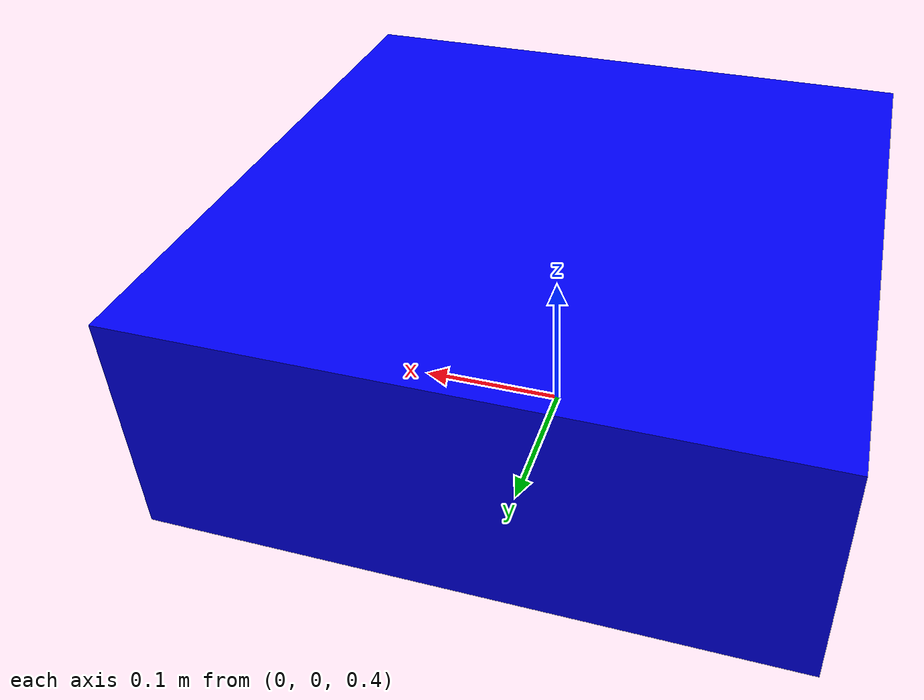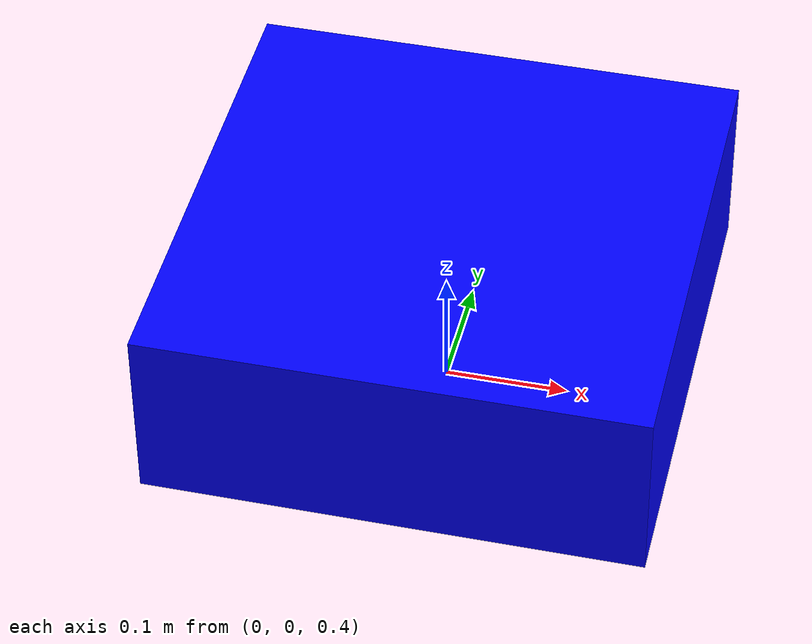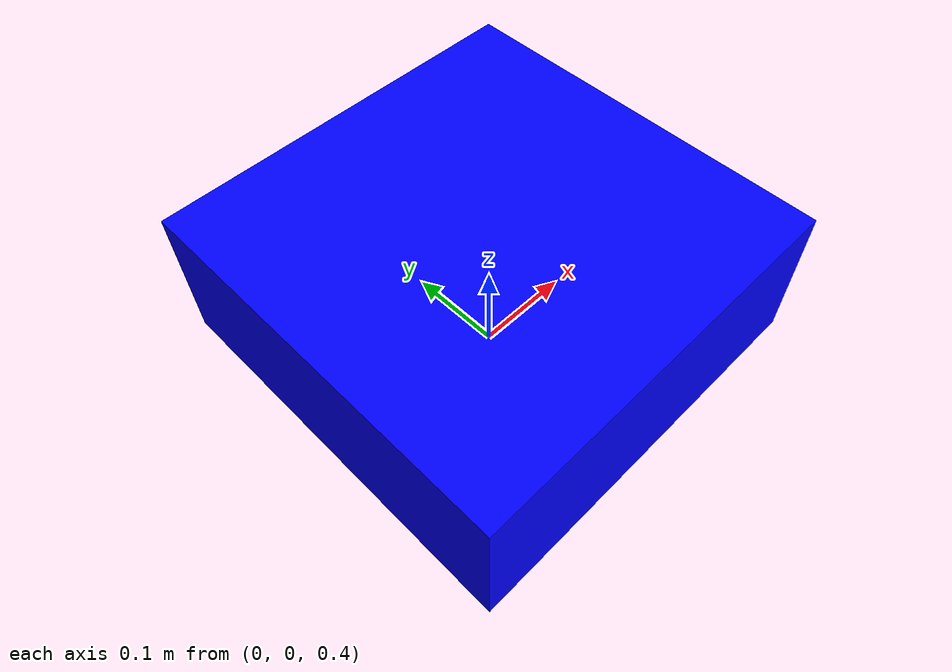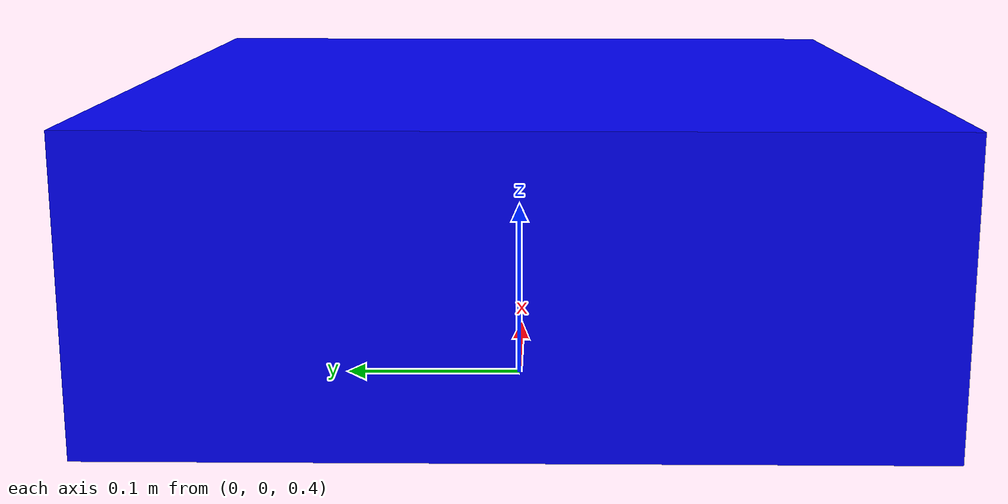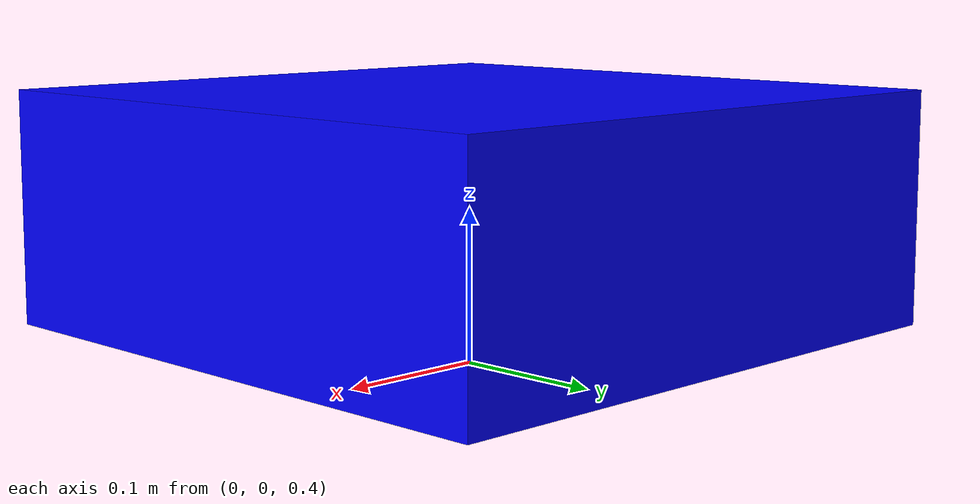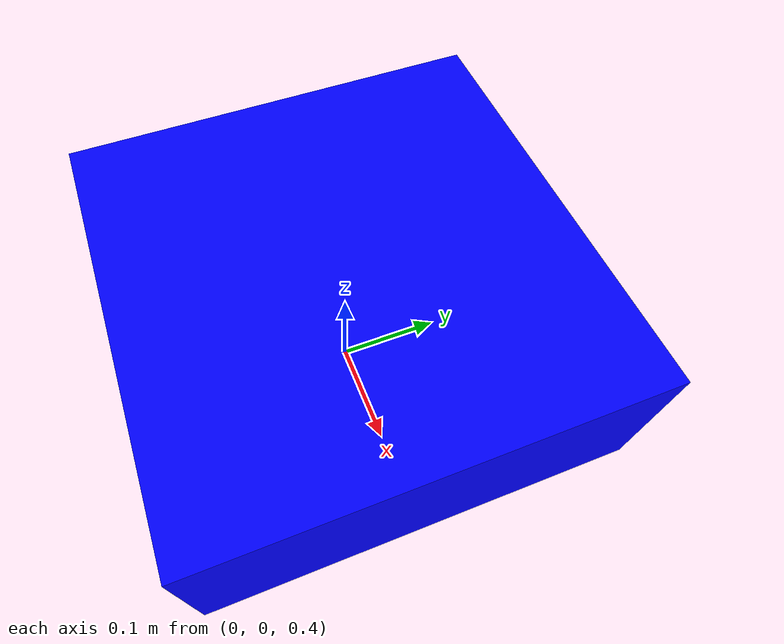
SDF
<?xml version="1.0" ?>
<sdf version="1.9">
  <model name="hexacopter">
    <pose>0 0 0.5 0 0 0</pose>
    <link name="base_link">
      <inertial>
        <mass>1.5</mass>
        <inertia>
          <ixx>0.011</ixx><ixy>0</ixy><ixz>0</ixz>
          <iyy>0.015</iyy><iyz>0</iyz><izz>0.021</izz>
        </inertia>
      </inertial>

      <collision name="base_link_collision">
        <geometry><box><size>0.4 0.4 0.15</size></box></geometry>
      </collision>

      <visual name="base_link_visual">
        <geometry><box><size>0.4 0.4 0.15</size></box></geometry>
        <material>
          <ambient>0 0 1 1</ambient> <diffuse>0 0 1 1</diffuse>
        </material>
      </visual>

      <sensor name="thermal_camera" type="thermal">
        <pose>0 0 -0.1 0 1.57 0</pose> <camera>
          <horizontal_fov>1.047</horizontal_fov>
          <image><width>640</width><height>480</height><format>L8</format></image>
          <clip><near>0.1</near><far>100</far></clip>
        </camera>
        <always_on>1</always_on>
        <update_rate>10</update_rate>
        <visualize>true</visualize>
        <topic>thermal_camera/image_raw</topic>
      </sensor>

      <sensor name="imu_sensor" type="imu">
        <always_on>1</always_on>
        <update_rate>100</update_rate>
        <visualize>true</visualize>
        <topic>imu</topic>
      </sensor>
    </link>

    <plugin filename="gz-sim-multicopter-motor-model-system" name="gz::sim::systems::MulticopterMotorModel">
      <robotNamespace>hexacopter</robotNamespace>
      <linkName>base_link</linkName>
      <commandSubTopic>cmd_vel</commandSubTopic>
    </plugin>
  </model>
</sdf>
